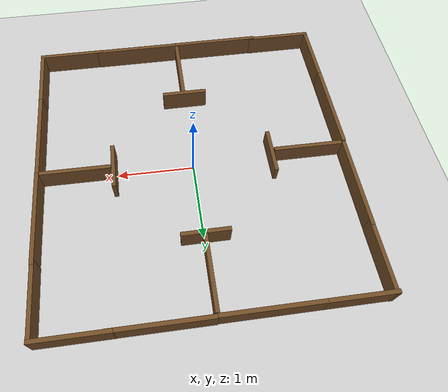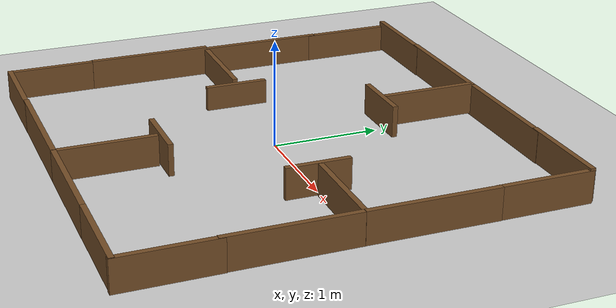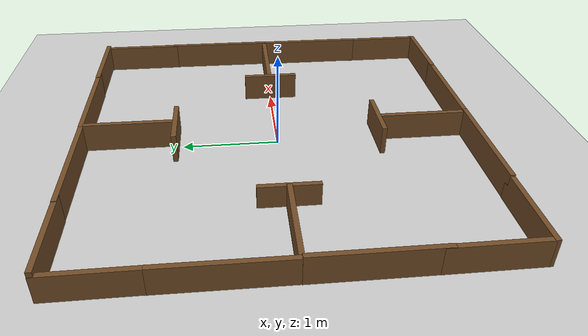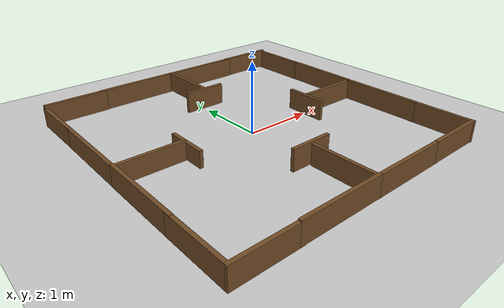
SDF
<sdf version="1.8">
 <world name="default">
  <light name="sun" type="directional">
   <pose>0 0 10 0 -0 0</pose>
   <diffuse>0.8 0.8 0.8 1</diffuse>
   <specular>0.2 0.2 0.2 1</specular>
   <attenuation>
    <range>1000</range>
    <constant>0.9</constant>
    <linear>0.01</linear>
    <quadratic>0.001</quadratic>
   </attenuation>
   <direction>-0.5 0.1 -0.9</direction>
   <spot><inner_angle>0</inner_angle><outer_angle>0</outer_angle><falloff>0</falloff></spot>
  </light>
  <model name="ground_plane">
   <static>1</static>
   <link name="link">
    <collision name="collision">
     <geometry><plane><normal>0 0 1</normal><size>100 100</size></plane></geometry>
     <surface>
      <contact><collide_bitmask>65535</collide_bitmask></contact>
      <friction><ode><mu>100</mu><mu2>50</mu2></ode></friction>
     </surface>
    </collision>
    <visual name="visual">
     <cast_shadows>0</cast_shadows>
     <geometry><plane><normal>0 0 1</normal><size>100 100</size></plane></geometry>
     <material>
      <script><uri>file://media/materials/scripts/gazebo.material</uri><name>Gazebo/Grey</name></script>
     </material>
    </visual>
   </link>
  </model>
  <gravity>0 0 -9.8</gravity>
  <magnetic_field>6e-06 2.3e-05 -4.2e-05</magnetic_field>
  <atmosphere type="adiabatic"/>
  <physics type="ode">
   <max_step_size>0.001</max_step_size>
   <real_time_factor>1</real_time_factor>
   <real_time_update_rate>1000</real_time_update_rate>
  </physics>
  <scene><ambient>0.4 0.4 0.4 1</ambient><background>0.7 0.7 0.7 1</background><shadows>1</shadows></scene>
  <audio><device>default</device></audio>
  <spherical_coordinates>
   <surface_model>EARTH_WGS84</surface_model>
   <latitude_deg>0</latitude_deg>
   <longitude_deg>0</longitude_deg>
   <elevation>0</elevation>
   <heading_deg>0</heading_deg>
  </spherical_coordinates>
  <model name="wall60cm">
   <static>1</static>
   <pose>-0.010842 1.06092 0.191222 0 -0 0</pose>
   <link name="link">
    <collision name="collision"><geometry><box><size>0.6 0.05 0.3</size></box></geometry></collision>
    <visual name="visual">
     <geometry><box><size>0.6 0.05 0.3</size></box></geometry>
     <material>
      <ambient>0.45 0.3 0.15 1</ambient>
      <diffuse>0.45 0.3 0.15 1</diffuse>
      <specular>0.05 0.05 0.05 1</specular>
     </material>
    </visual>
   </link>
  </model>
  <model name="wall60cm_0">
   <static>1</static>
   <pose>-0.010879 -1.06102 0.157841 0 -0 0</pose>
   <link name="link">
    <collision name="collision"><geometry><box><size>0.6 0.05 0.3</size></box></geometry></collision>
    <visual name="visual">
     <geometry><box><size>0.6 0.05 0.3</size></box></geometry>
     <material>
      <ambient>0.45 0.3 0.15 1</ambient>
      <diffuse>0.45 0.3 0.15 1</diffuse>
      <specular>0.05 0.05 0.05 1</specular>
     </material>
    </visual>
   </link>
  </model>
  <model name="wall60cm_1">
   <static>1</static>
   <pose>1.02822 -0.005575 0.139957 0 0 -1.5749</pose>
   <link name="link">
    <collision name="collision"><geometry><box><size>0.6 0.05 0.3</size></box></geometry></collision>
    <visual name="visual">
     <geometry><box><size>0.6 0.05 0.3</size></box></geometry>
     <material>
      <ambient>0.45 0.3 0.15 1</ambient>
      <diffuse>0.45 0.3 0.15 1</diffuse>
      <specular>0.05 0.05 0.05 1</specular>
     </material>
    </visual>
   </link>
  </model>
  <model name="wall60cm_2">
   <static>1</static>
   <pose>-1.03905 -0.005338 0.080368 0 0 -1.5754</pose>
   <link name="link">
    <collision name="collision"><geometry><box><size>0.6 0.05 0.3</size></box></geometry></collision>
    <visual name="visual">
     <geometry><box><size>0.6 0.05 0.3</size></box></geometry>
     <material>
      <ambient>0.45 0.3 0.15 1</ambient>
      <diffuse>0.45 0.3 0.15 1</diffuse>
      <specular>0.05 0.05 0.05 1</specular>
     </material>
    </visual>
   </link>
  </model>
  <model name="wall120cm">
   <static>1</static>
   <link name="link">
    <collision name="collision"><geometry><box><size>1.2 0.05 0.3</size></box></geometry></collision>
    <visual name="visual">
     <geometry><box><size>1.2 0.05 0.3</size></box></geometry>
     <material>
      <ambient>0.45 0.3 0.15 1</ambient>
      <diffuse>0.45 0.3 0.15 1</diffuse>
      <specular>0.05 0.05 0.05 1</specular>
     </material>
    </visual>
   </link>
   <pose>0.59832 2.01797 0.164636 0 -0 0</pose>
  </model>
  <model name="wall120cm_0">
   <static>1</static>
   <link name="link">
    <collision name="collision"><geometry><box><size>1.2 0.05 0.3</size></box></geometry></collision>
    <visual name="visual">
     <geometry><box><size>1.2 0.05 0.3</size></box></geometry>
     <material>
      <ambient>0.45 0.3 0.15 1</ambient>
      <diffuse>0.45 0.3 0.15 1</diffuse>
      <specular>0.05 0.05 0.05 1</specular>
     </material>
    </visual>
   </link>
   <pose>-0.598319 2.01253 0.167567 0 -0 0</pose>
  </model>
  <model name="wall120cm_1">
   <static>1</static>
   <link name="link">
    <collision name="collision"><geometry><box><size>1.2 0.05 0.3</size></box></geometry></collision>
    <visual name="visual">
     <geometry><box><size>1.2 0.05 0.3</size></box></geometry>
     <material>
      <ambient>0.45 0.3 0.15 1</ambient>
      <diffuse>0.45 0.3 0.15 1</diffuse>
      <specular>0.05 0.05 0.05 1</specular>
     </material>
    </visual>
   </link>
   <pose>1.9856 0.586805 0.149126 0 0 -1.57492</pose>
  </model>
  <model name="wall120cm_2">
   <static>1</static>
   <link name="link">
    <collision name="collision"><geometry><box><size>1.2 0.05 0.3</size></box></geometry></collision>
    <visual name="visual">
     <geometry><box><size>1.2 0.05 0.3</size></box></geometry>
     <material>
      <ambient>0.45 0.3 0.15 1</ambient>
      <diffuse>0.45 0.3 0.15 1</diffuse>
      <specular>0.05 0.05 0.05 1</specular>
     </material>
    </visual>
   </link>
   <pose>1.98047 -0.604197 0.146992 0 0 -1.57179</pose>
  </model>
  <model name="wall90cm">
   <static>1</static>
   <pose>1.5552 2.02066 0.169115 0 -0 0</pose>
   <link name="link">
    <collision name="collision"><geometry><box><size>0.9 0.05 0.3</size></box></geometry></collision>
    <visual name="visual">
     <geometry><box><size>0.9 0.05 0.3</size></box></geometry>
     <material>
      <ambient>0.45 0.3 0.15 1</ambient>
      <diffuse>0.45 0.3 0.15 1</diffuse>
      <specular>0.05 0.05 0.05 1</specular>
     </material>
    </visual>
   </link>
  </model>
  <model name="wall90cm_0">
   <static>1</static>
   <pose>1.98249 1.58938 0.14828 0 0 -1.56713</pose>
   <link name="link">
    <collision name="collision"><geometry><box><size>0.9 0.05 0.3</size></box></geometry></collision>
    <visual name="visual">
     <geometry><box><size>0.9 0.05 0.3</size></box></geometry>
     <material>
      <ambient>0.45 0.3 0.15 1</ambient>
      <diffuse>0.45 0.3 0.15 1</diffuse>
      <specular>0.05 0.05 0.05 1</specular>
     </material>
    </visual>
   </link>
  </model>
  <model name="wall120cm_clone">
   <static>1</static>
   <link name="link">
    <collision name="collision"><geometry><box><size>1.2 0.05 0.3</size></box></geometry></collision>
    <visual name="visual">
     <geometry><box><size>1.2 0.05 0.3</size></box></geometry>
     <material>
      <ambient>0.45 0.3 0.15 1</ambient>
      <diffuse>0.45 0.3 0.15 1</diffuse>
      <specular>0.05 0.05 0.05 1</specular>
     </material>
    </visual>
   </link>
   <pose>0.586554 -2.01599 0.145782 0 -0 0</pose>
  </model>
  <model name="wall90cm_clone">
   <static>1</static>
   <pose>1.55581 -2.016 0.148697 0 -0 0</pose>
   <link name="link">
    <collision name="collision"><geometry><box><size>0.9 0.05 0.3</size></box></geometry></collision>
    <visual name="visual">
     <geometry><box><size>0.9 0.05 0.3</size></box></geometry>
     <material>
      <ambient>0.45 0.3 0.15 1</ambient>
      <diffuse>0.45 0.3 0.15 1</diffuse>
      <specular>0.05 0.05 0.05 1</specular>
     </material>
    </visual>
   </link>
  </model>
  <model name="wall90cm_0_clone">
   <static>1</static>
   <pose>1.98295 -1.59434 0.144064 0 0 -1.56713</pose>
   <link name="link">
    <collision name="collision"><geometry><box><size>0.9 0.05 0.3</size></box></geometry></collision>
    <visual name="visual">
     <geometry><box><size>0.9 0.05 0.3</size></box></geometry>
     <material>
      <ambient>0.45 0.3 0.15 1</ambient>
      <diffuse>0.45 0.3 0.15 1</diffuse>
      <specular>0.05 0.05 0.05 1</specular>
     </material>
    </visual>
   </link>
  </model>
  <model name="wall90cm_clone_0">
   <static>1</static>
   <pose>-1.55915 2.0114 0.162005 0 -0 0</pose>
   <link name="link">
    <collision name="collision"><geometry><box><size>0.9 0.05 0.3</size></box></geometry></collision>
    <visual name="visual">
     <geometry><box><size>0.9 0.05 0.3</size></box></geometry>
     <material>
      <ambient>0.45 0.3 0.15 1</ambient>
      <diffuse>0.45 0.3 0.15 1</diffuse>
      <specular>0.05 0.05 0.05 1</specular>
     </material>
    </visual>
   </link>
  </model>
  <model name="wall90cm_0_clone_0">
   <static>1</static>
   <pose>-1.98751 1.58662 0.114543 0 0 -1.56713</pose>
   <link name="link">
    <collision name="collision"><geometry><box><size>0.9 0.05 0.3</size></box></geometry></collision>
    <visual name="visual">
     <geometry><box><size>0.9 0.05 0.3</size></box></geometry>
     <material>
      <ambient>0.45 0.3 0.15 1</ambient>
      <diffuse>0.45 0.3 0.15 1</diffuse>
      <specular>0.05 0.05 0.05 1</specular>
     </material>
    </visual>
   </link>
  </model>
  <model name="wall120cm_1_clone">
   <static>1</static>
   <link name="link">
    <collision name="collision"><geometry><box><size>1.2 0.05 0.3</size></box></geometry></collision>
    <visual name="visual">
     <geometry><box><size>1.2 0.05 0.3</size></box></geometry>
     <material>
      <ambient>0.45 0.3 0.15 1</ambient>
      <diffuse>0.45 0.3 0.15 1</diffuse>
      <specular>0.05 0.05 0.05 1</specular>
     </material>
    </visual>
   </link>
   <pose>-1.99045 0.601482 0.117351 0 0 -1.57492</pose>
  </model>
  <model name="wall120cm_2_clone">
   <static>1</static>
   <link name="link">
    <collision name="collision"><geometry><box><size>1.2 0.05 0.3</size></box></geometry></collision>
    <visual name="visual">
     <geometry><box><size>1.2 0.05 0.3</size></box></geometry>
     <material>
      <ambient>0.45 0.3 0.15 1</ambient>
      <diffuse>0.45 0.3 0.15 1</diffuse>
      <specular>0.05 0.05 0.05 1</specular>
     </material>
    </visual>
   </link>
   <pose>-1.99593 -0.597771 0.134044 0 0 -1.57179</pose>
  </model>
  <model name="wall90cm_0_clone_clone">
   <static>1</static>
   <pose>-1.99593 -1.55608 0.129243 0 0 -1.56713</pose>
   <link name="link">
    <collision name="collision"><geometry><box><size>0.9 0.05 0.3</size></box></geometry></collision>
    <visual name="visual">
     <geometry><box><size>0.9 0.05 0.3</size></box></geometry>
     <material>
      <ambient>0.45 0.3 0.15 1</ambient>
      <diffuse>0.45 0.3 0.15 1</diffuse>
      <specular>0.05 0.05 0.05 1</specular>
     </material>
    </visual>
   </link>
  </model>
  <model name="wall120cm_clone_clone">
   <static>1</static>
   <link name="link">
    <collision name="collision"><geometry><box><size>1.2 0.05 0.3</size></box></geometry></collision>
    <visual name="visual">
     <geometry><box><size>1.2 0.05 0.3</size></box></geometry>
     <material>
      <ambient>0.45 0.3 0.15 1</ambient>
      <diffuse>0.45 0.3 0.15 1</diffuse>
      <specular>0.05 0.05 0.05 1</specular>
     </material>
    </visual>
   </link>
   <pose>-0.583109 -2.01607 0.148695 0 -0 0</pose>
  </model>
  <model name="wall90cm_clone_clone">
   <static>1</static>
   <pose>-1.5688 -2.01607 0.131399 0 -0 0</pose>
   <link name="link">
    <collision name="collision"><geometry><box><size>0.9 0.05 0.3</size></box></geometry></collision>
    <visual name="visual">
     <geometry><box><size>0.9 0.05 0.3</size></box></geometry>
     <material>
      <ambient>0.45 0.3 0.15 1</ambient>
      <diffuse>0.45 0.3 0.15 1</diffuse>
      <specular>0.05 0.05 0.05 1</specular>
     </material>
    </visual>
   </link>
  </model>
  <model name="wall90cm_1">
   <static>1</static>
   <pose>0.000285 1.53768 0.186412 0 0 -1.57309</pose>
   <link name="link">
    <collision name="collision"><geometry><box><size>0.9 0.05 0.3</size></box></geometry></collision>
    <visual name="visual">
     <geometry><box><size>0.9 0.05 0.3</size></box></geometry>
     <material>
      <ambient>0.45 0.3 0.15 1</ambient>
      <diffuse>0.45 0.3 0.15 1</diffuse>
      <specular>0.05 0.05 0.05 1</specular>
     </material>
    </visual>
   </link>
  </model>
  <model name="wall90cm_1_clone">
   <static>1</static>
   <pose>-0.002223 -1.5405 0.1346 0 0 -1.57309</pose>
   <link name="link">
    <collision name="collision"><geometry><box><size>0.9 0.05 0.3</size></box></geometry></collision>
    <visual name="visual">
     <geometry><box><size>0.9 0.05 0.3</size></box></geometry>
     <material>
      <ambient>0.45 0.3 0.15 1</ambient>
      <diffuse>0.45 0.3 0.15 1</diffuse>
      <specular>0.05 0.05 0.05 1</specular>
     </material>
    </visual>
   </link>
  </model>
  <model name="wall90cm_1_clone_0">
   <static>1</static>
   <pose>-1.51941 0.000855 0.109953 0 0 -0.006993</pose>
   <link name="link">
    <collision name="collision"><geometry><box><size>0.9 0.05 0.3</size></box></geometry></collision>
    <visual name="visual">
     <geometry><box><size>0.9 0.05 0.3</size></box></geometry>
     <material>
      <ambient>0.45 0.3 0.15 1</ambient>
      <diffuse>0.45 0.3 0.15 1</diffuse>
      <specular>0.05 0.05 0.05 1</specular>
     </material>
    </visual>
   </link>
  </model>
  <model name="wall90cm_1_clone_0_clone">
   <static>1</static>
   <pose>1.50858 0.002142 0.139688 0 0 -0.006993</pose>
   <link name="link">
    <collision name="collision"><geometry><box><size>0.9 0.05 0.3</size></box></geometry></collision>
    <visual name="visual">
     <geometry><box><size>0.9 0.05 0.3</size></box></geometry>
     <material>
      <ambient>0.45 0.3 0.15 1</ambient>
      <diffuse>0.45 0.3 0.15 1</diffuse>
      <specular>0.05 0.05 0.05 1</specular>
     </material>
    </visual>
   </link>
  </model>
 </world>
</sdf>
